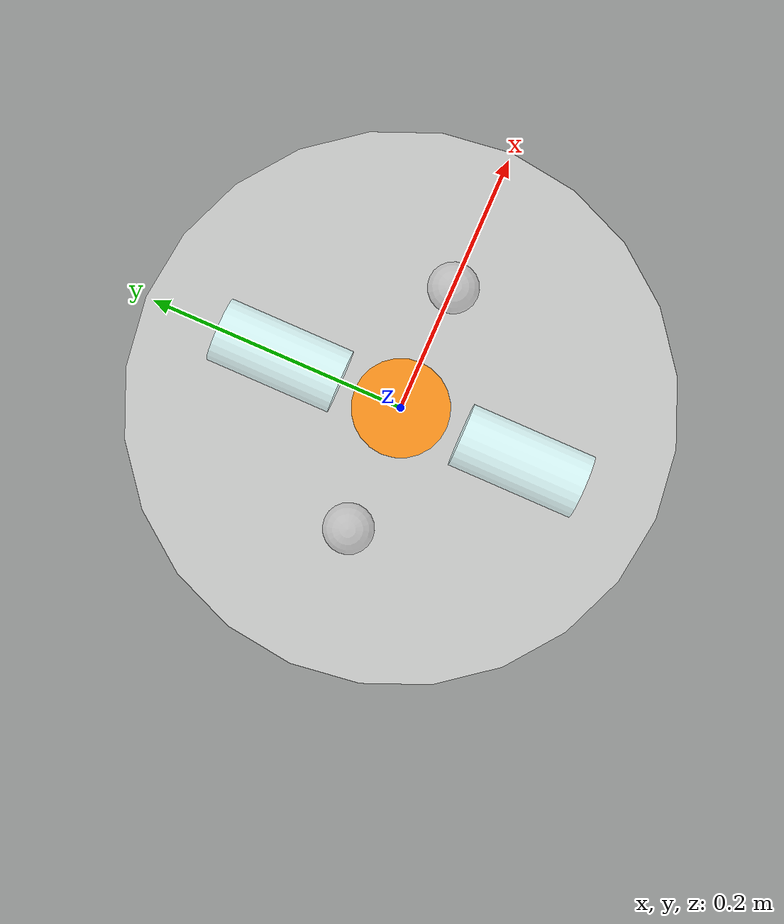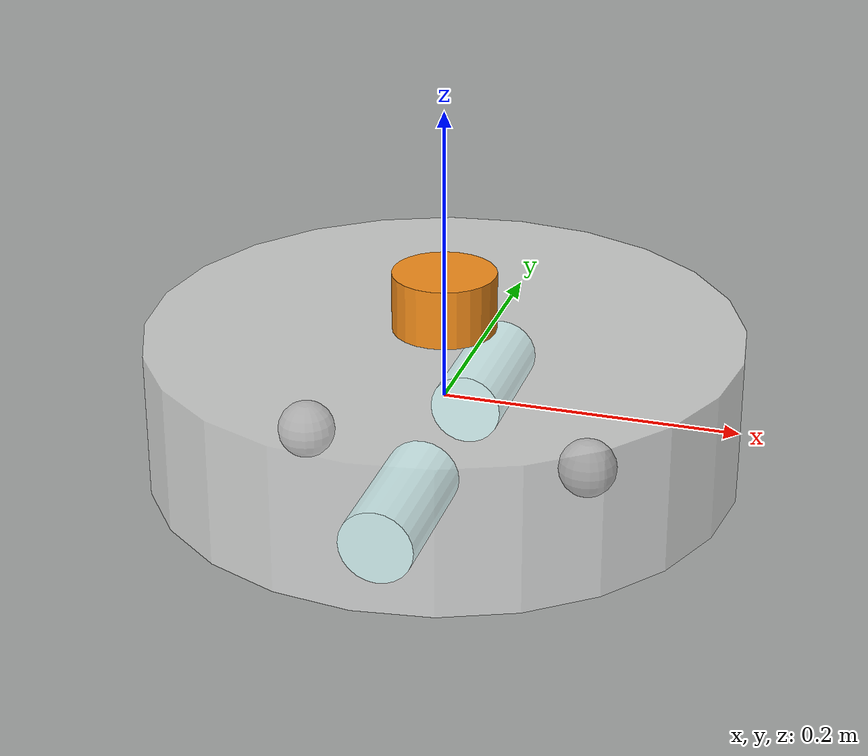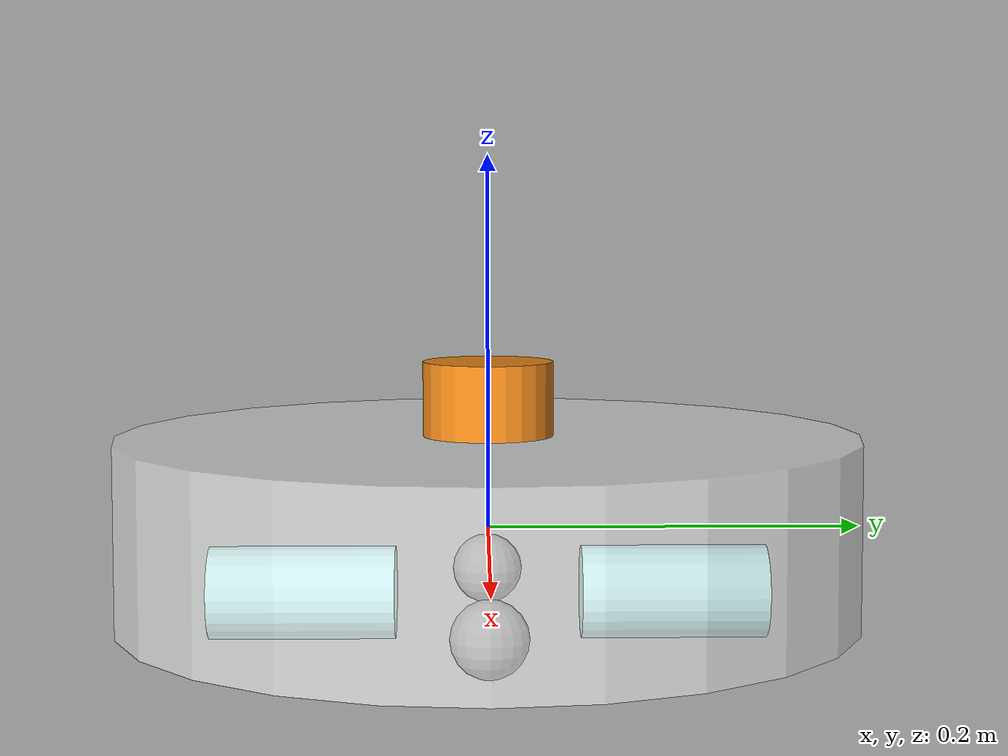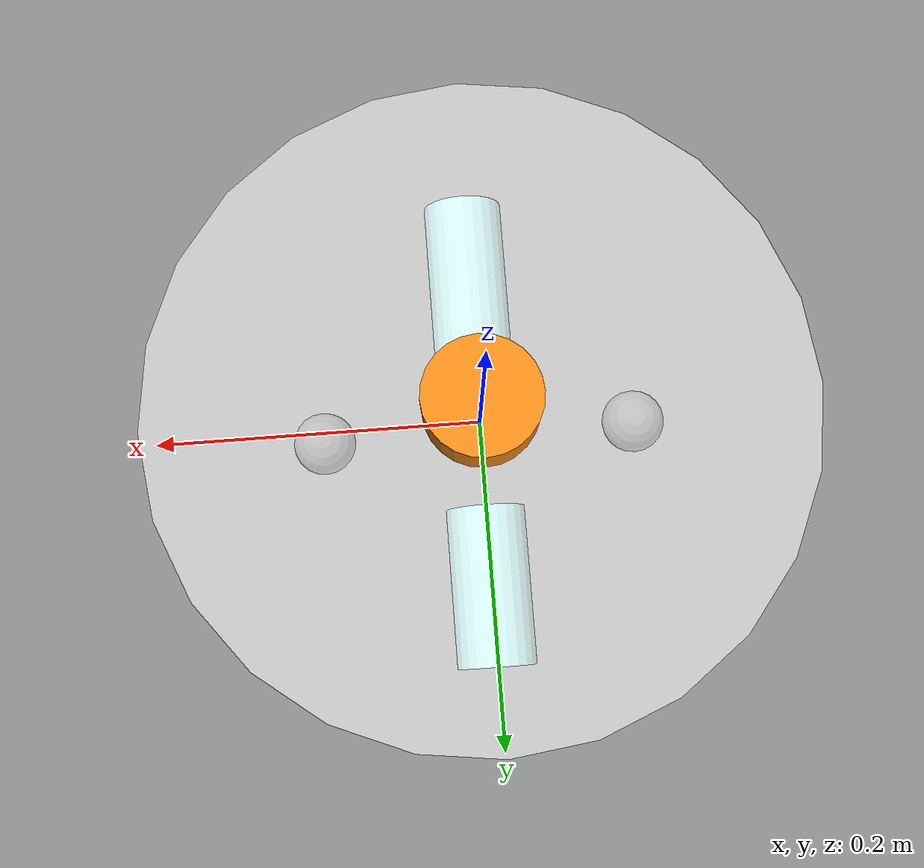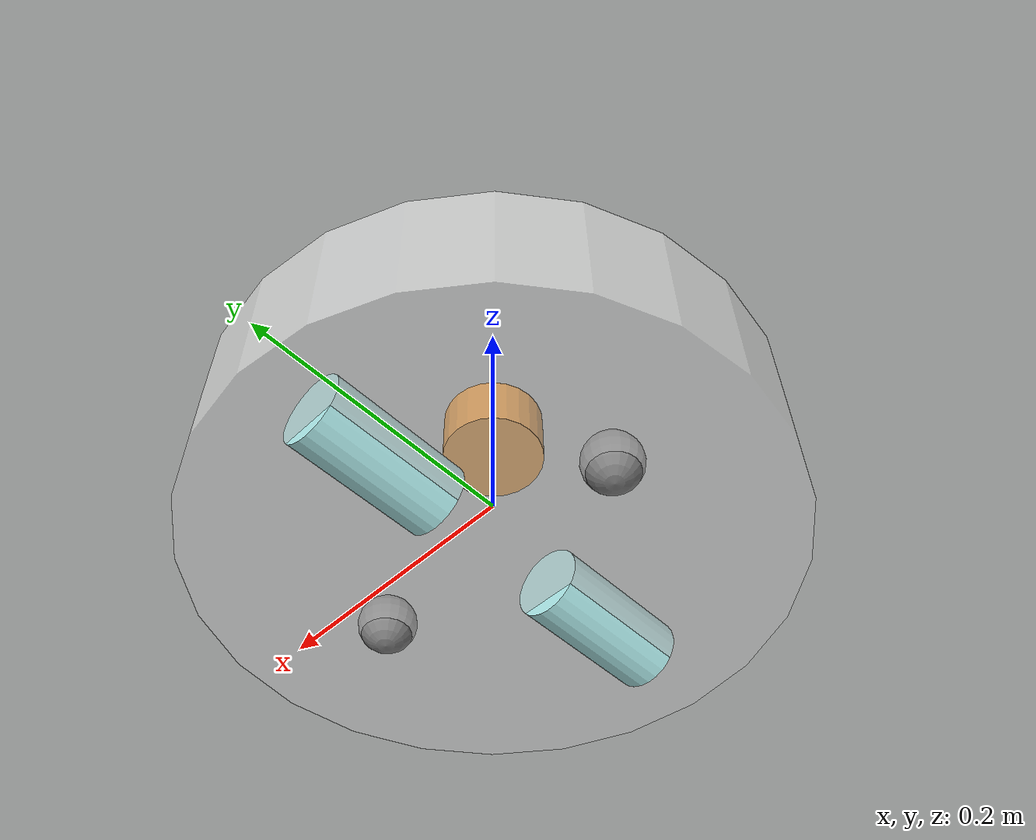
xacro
<?xml version="1.0"?>
<robot xmlns:xacro="http://www.ros.org/wiki/xacro" name="sugv">
	<xacro:property name="body_height" value="0.1" />
	<xacro:property name="body_radius" value="0.2" />
	<xacro:property name="wheel_caster_offset" value="0.01" />
	<xacro:property name="wheel_radius" value="${body_height/4}" />
	<xacro:property name="wheel_width" value="0.1" />
	<xacro:property name="caster_radius" value="0.02" />
	<xacro:property name="wheel_bottom" value="${-body_height/2+wheel_radius}" />
	<xacro:property name="caster_bottom" value="${-body_height/2+caster_radius}" />
	<xacro:property name="lidar_height" value="0.04" />
	<xacro:property name="lidar_radius" value="0.035" />

	<link name="base_link">
		<inertial>
			<origin xyz="0.0 0.0 0.0" rpy="0.0 0.0 0.0"/>
			<mass value="3.0000"/>
			<inertia ixx="0.0525" ixy="0.0" ixz="0.0" iyy="0.0525" iyz="0.0" izz="0.0600" />
		</inertial>
		<visual>
			<geometry>
				<cylinder radius="${body_radius}" length="${body_height}"/>
			</geometry>
			<material name="white">
				<color rgba="1 1 1 0.5" />
			</material>
		</visual>
		<collision>
			<geometry>
				<cylinder radius="${body_radius}" length="${body_height}"/>
			</geometry>
		</collision>
	</link>

	<link name="link_imu" />
	<joint name="joint_imu" type="fixed">
		<parent link="base_link"/>
		<child link="link_imu"/>
		<origin xyz="0.0 0.0 0.0" rpy="0.0 0.0 0.0"/>
	</joint>

	<link name="link_laser">
		<visual>
			<origin xyz="0.0 0.0 0.0" rpy="0.0 0.0 0.0"/>
			<geometry>
				<cylinder radius="${lidar_radius}" length="${lidar_height}"/>
			</geometry>
		</visual>
	</link>

	<joint name="joint_lidar" type="fixed">
		<parent link="base_link"/>
		<child link="link_laser"/>
		<origin xyz="0.0 0.0 ${body_height/2 + lidar_height/2}" rpy="0.0 0.0 0.0"/>
	</joint>

	<xacro:macro name="sugv_wheel" params="wheel_prefix *joint_pose">
		<link name="link_wheel_${wheel_prefix}">
			<inertial>
				<mass value="0.5000"/>
				<inertia ixx="0.0009" ixy="0.0" ixz="0.0" iyy="0.0009" iyz="0.0" izz="0.0014" />
			</inertial>
			<visual>
				<origin xyz="0.0 0.0 0.0" rpy="${pi/2} 0.0 0.0"/>
				<geometry>
					<cylinder radius="${wheel_radius}" length="${wheel_width}"/>
				</geometry>
				<material name="pale_turquoise">
					<color rgba="0.69 0.93 0.93 1" />
				</material>
			</visual>
			<collision>
				<origin xyz="0.0 0.0 0.0" rpy="${pi/2} 0.0 0.0"/>
				<geometry>
					<cylinder radius="${wheel_radius}" length="${wheel_width}"/>
				</geometry>
			</collision>
		</link>

		<gazebo reference="link_wheel_${wheel_prefix}">
			<material>Gazebo/Turquoise</material>
			<mu1 value="1.0" />
			<mu2 value="1.0" />
			<kp value="10000000.0" />
			<kd value="1.0" />
			<fdir1 value="1 0 0"/>
			<selfCollide value="false" />
		</gazebo>

		<joint name="joint_wheel_${wheel_prefix}" type="continuous">
			<parent link="base_link"/>
			<child link="link_wheel_${wheel_prefix}"/>
			<axis xyz="0 1 0"/>
			<xacro:insert_block name="joint_pose" />
		</joint>

		<transmission name="trans_${wheel_prefix}" type="SimpleTransmission">
			<type>transmission_interface/SimpleTransmission</type>
			<actuator name="motor_${wheel_prefix}">
				<mechanicalReduction>1</mechanicalReduction>
			</actuator>
			<joint name="joint_wheel_${wheel_prefix}">
				<hardwareInterface>hardware_interface/VelocityJointInterface</hardwareInterface>
			</joint>
		</transmission>

	</xacro:macro>

	<xacro:macro name="sugv_caster" params="wheel_prefix *joint_pose">
		<link name="link_caster_${wheel_prefix}">
			<inertial>
				<mass value="0.0050"/>
				<inertia ixx="0.0000" ixy="0.0" ixz="0.0" iyy="0.0000" iyz="0.0" izz="0.0000" />
			</inertial>
			<visual>
				<geometry>
					<sphere radius="${caster_radius}"/>
				</geometry>
				<material name="gray">
					<color rgba="0.5 0.5 0.5 1" />
				</material>
			</visual>
			<collision>
				<geometry>
					<sphere radius="${caster_radius}"/>
				</geometry>
			</collision>
		</link>

		<gazebo reference="link_caster_${wheel_prefix}">
			<material>Gazebo/Grey</material>
			<mu1 value="0.0" />
			<mu2 value="0.0" />
			<kp value="10000000.0" />
			<kd value="1.0" />
			<fdir1 value="1 0 0"/>
			<selfCollide value="false" />
		</gazebo>

		<joint name="joint_caster_${wheel_prefix}" type="fixed">
			<parent link="base_link"/>
			<child link="link_caster_${wheel_prefix}"/>
			<axis xyz="0 1 0"/>
			<xacro:insert_block name="joint_pose" />
		</joint>
	</xacro:macro>

	<xacro:sugv_wheel wheel_prefix="left">
		<origin xyz="0.0 ${body_radius/2} ${wheel_bottom - wheel_caster_offset}" rpy="0 0 0" />
	</xacro:sugv_wheel>

	<xacro:sugv_wheel wheel_prefix="right">
		<origin xyz="0.0 ${-body_radius/2} ${wheel_bottom - wheel_caster_offset}" rpy="0 0 0" />
	</xacro:sugv_wheel>

	<xacro:sugv_caster wheel_prefix="back">
		<origin xyz="${-body_radius/2} 0.0 ${caster_bottom - wheel_caster_offset}" rpy="0 0 0" />
	</xacro:sugv_caster>
	<xacro:sugv_caster wheel_prefix="front">
		<origin xyz="${body_radius/2} 0.0 ${caster_bottom - wheel_caster_offset}" rpy="0 0 0" />
	</xacro:sugv_caster>

	<gazebo>
		<plugin name="gazebo_ros_control" filename="libgazebo_ros_control.so">
		</plugin>
	</gazebo>

	<gazebo reference="link_imu">
		<gravity>true</gravity>
		<sensor name="imu_sensor" type="imu">
			<always_on>true</always_on>
			<update_rate>100</update_rate>
			<visualize>true</visualize>
			<topic>__default_topic__</topic>
			<plugin filename="libgazebo_ros_imu_sensor.so" name="imu_plugin">
				<topicName>sensor/imu</topicName>
				<bodyName>link_imu</bodyName>
				<updateRateHZ>10.0</updateRateHZ>
				<gaussianNoise>0.0</gaussianNoise>
				<xyzOffset>0 0 0</xyzOffset>
				<rpyOffset>0 0 0</rpyOffset>
				<frameName>link_imu</frameName>
				<initialOrientationAsReference>false</initialOrientationAsReference>
			</plugin>
			<pose>0 0 0 0 0 0</pose>
		</sensor>
	</gazebo>

	<gazebo reference="link_laser">
		<material>Gazebo/Orange</material>
		<sensor type="ray" name="head_rplidar_sensor">
			<pose>0 0 ${body_height/2 + lidar_height/2} 0 0 0</pose>
			<visualize>false</visualize>
			<update_rate>10</update_rate>
			<ray>
				<scan>
					<horizontal>
						<samples>700</samples>
						<resolution>1</resolution>
						<min_angle>${-pi}</min_angle>
						<max_angle>${pi}</max_angle>
					</horizontal>
				</scan>
				<range>
					<min>0.25</min>
					<max>6.0</max>
					<resolution>0.01</resolution>
				</range>
				<noise>
					<type>gaussian</type>
					<mean>0.0</mean>
					<stddev>0.01</stddev>
				</noise>
			</ray>
			<plugin name="gazebo_ros_head_rplidar_controller" filename="libgazebo_ros_laser.so">
				<topicName>sensor/scan</topicName>
				<frameName>link_laser</frameName>
			</plugin>
		</sensor>
	</gazebo>
</robot>
